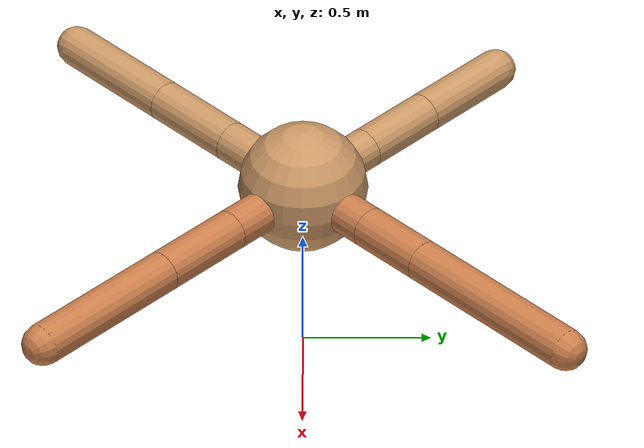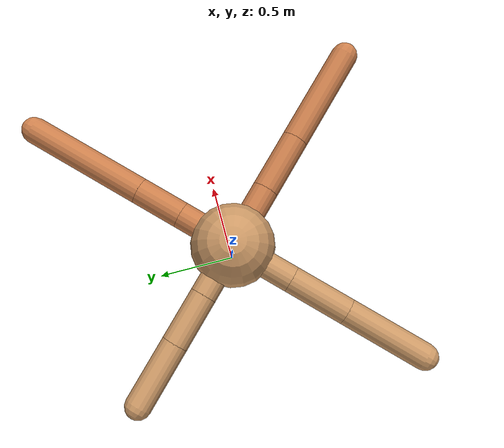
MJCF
<mujoco model="ant">
  <compiler angle="degree" coordinate="local" inertiafromgeom="true" />
  <option integrator="RK4" timestep="0.01" />
  <custom>
    <numeric data="0.0 0.0 0.55 1.0 0.0 0.0 0.0 0.0 1.0 0.0 -1.0 0.0 -1.0 0.0 1.0" name="init_qpos" />
  </custom>
  <default>
    <joint armature="1" damping="1" limited="true" />
    <geom conaffinity="0" condim="3" density="5.0" friction="1.5 0.1 0.1" margin="0.01" rgba="0.8 0.6 0.4 1" />
  </default>
  <worldbody>
    <body name="torso" pos="0 0 0.75">
      <geom name="torso_geom" pos="0 0 0" size="0.25" type="sphere" />

      <body name="front_left_leg" pos="0 0 0">
        <geom fromto="0.0 0.0 0.0 0.2495878409043046 0.2495878409043046 0.0" name="aux_1_geom" size="0.08" type="capsule" rgba=".8 .5 .3 1" />
        <body name="aux_1" pos="0.2495878409043046 0.2495878409043046 0.0">
          <joint axis="0 0 1" name="hip_1" pos="0.0 0.0 0.0" range="-40 40" type="hinge" />
          <geom fromto="0.0 0.0 0.0 0.20210637108256832 0.20210637108256832 0.0" name="left_leg_geom" size="0.08" type="capsule" rgba=".8 .5 .3 1" />
          <body pos="0.20210637108256832 0.20210637108256832 0.0" name="front_left_foot">
            <joint axis="-1 1 0" name="ankle_1" pos="0.0 0.0 0.0" range="30 100" type="hinge" />
            <geom fromto="0.0 0.0 0.0 0.5196218441901421 0.5196218441901421 0.0" name="left_ankle_geom" size="0.08" type="capsule" rgba=".8 .5 .3 1" />
          </body>
        </body>
      </body>
      <body name="front_right_leg" pos="0 0 0">
        <geom fromto="0.0 0.0 0.0 -0.24024296305144954 0.24024296305144954 0.0" name="aux_2_geom" size="0.08" type="capsule" />
        <body name="aux_2" pos="-0.24024296305144954 0.24024296305144954 0.0">
          <joint axis="0 0 1" name="hip_2" pos="0.0 0.0 0.0" range="-40 40" type="hinge" />
          <geom fromto="0.0 0.0 0.0 -0.22662582248476967 0.22662582248476967 0.0" name="right_leg_geom" size="0.08" type="capsule" />
          <body pos="-0.22662582248476967 0.22662582248476967 0.0" name="front_right_foot">
            <joint axis="1 1 0" name="ankle_2" pos="0.0 0.0 0.0" range="-100 -30" type="hinge" />
            <geom fromto="0.0 0.0 0.0 -0.28527351714590377 0.28527351714590377 0.0" name="right_ankle_geom" size="0.08" type="capsule" />
          </body>
        </body>
      </body>
      <body name="left_back_leg" pos="0 0 0">
        <geom fromto="0.0 0.0 0.0 -0.2790796499460987 -0.2790796499460987 0.0" name="aux_3_geom" size="0.08" type="capsule" />
        <body name="aux_3" pos="-0.2790796499460987 -0.2790796499460987 0.0">
          <joint axis="0 0 1" name="hip_3" pos="0.0 0.0 0.0" range="-40 40" type="hinge" />
          <geom fromto="0.0 0.0 0.0 -0.2601155928639973 -0.2601155928639973 0.0" name="back_leg_geom" size="0.08" type="capsule" />
          <body pos="-0.2601155928639973 -0.2601155928639973 0.0" name="left_back_foot">
            <joint axis="-1 1 0" name="ankle_3" pos="0.0 0.0 0.0" range="-100 -30" type="hinge" />
            <geom fromto="0.0 0.0 0.0 -0.35862462419142194 -0.35862462419142194 0.0" name="third_ankle_geom" size="0.08" type="capsule" />
          </body>
        </body>
      </body>
      <body name="right_back_leg" pos="0 0 0">
        <geom fromto="0.0 0.0 0.0 0.2707664598176247 -0.2707664598176247 0.0" name="aux_4_geom" size="0.08" type="capsule" rgba=".8 .5 .3 1" />
        <body name="aux_4" pos="0.2707664598176247 -0.2707664598176247 0.0">
          <joint axis="0 0 1" name="hip_4" pos="0.0 0.0 0.0" range="-40 40" type="hinge" />
          <geom fromto="0.0 0.0 0.0 0.2501335915355222 -0.2501335915355222 0.0" name="rightback_leg_geom" size="0.08" type="capsule" rgba=".8 .5 .3 1" />
          <body pos="0.2501335915355222 -0.2501335915355222 0.0" name="right_back_foot">
            <joint axis="1 1 0" name="ankle_4" pos="0.0 0.0 0.0" range="30 100" type="hinge" />
            <geom fromto="0.0 0.0 0.0 0.43108690512274617 -0.43108690512274617 0.0" name="fourth_ankle_geom" size="0.08" type="capsule" rgba=".8 .5 .3 1" />
          </body>
        </body>
      </body>
    </body>
  </worldbody>
  <actuator>
    <motor ctrllimited="true" ctrlrange="-1.0 1.0" joint="hip_4" gear="150" />
    <motor ctrllimited="true" ctrlrange="-1.0 1.0" joint="ankle_4" gear="150" />
    <motor ctrllimited="true" ctrlrange="-1.0 1.0" joint="hip_1" gear="150" />
    <motor ctrllimited="true" ctrlrange="-1.0 1.0" joint="ankle_1" gear="150" />
    <motor ctrllimited="true" ctrlrange="-1.0 1.0" joint="hip_2" gear="150" />
    <motor ctrllimited="true" ctrlrange="-1.0 1.0" joint="ankle_2" gear="150" />
    <motor ctrllimited="true" ctrlrange="-1.0 1.0" joint="hip_3" gear="150" />
    <motor ctrllimited="true" ctrlrange="-1.0 1.0" joint="ankle_3" gear="150" />
  </actuator>
</mujoco>
